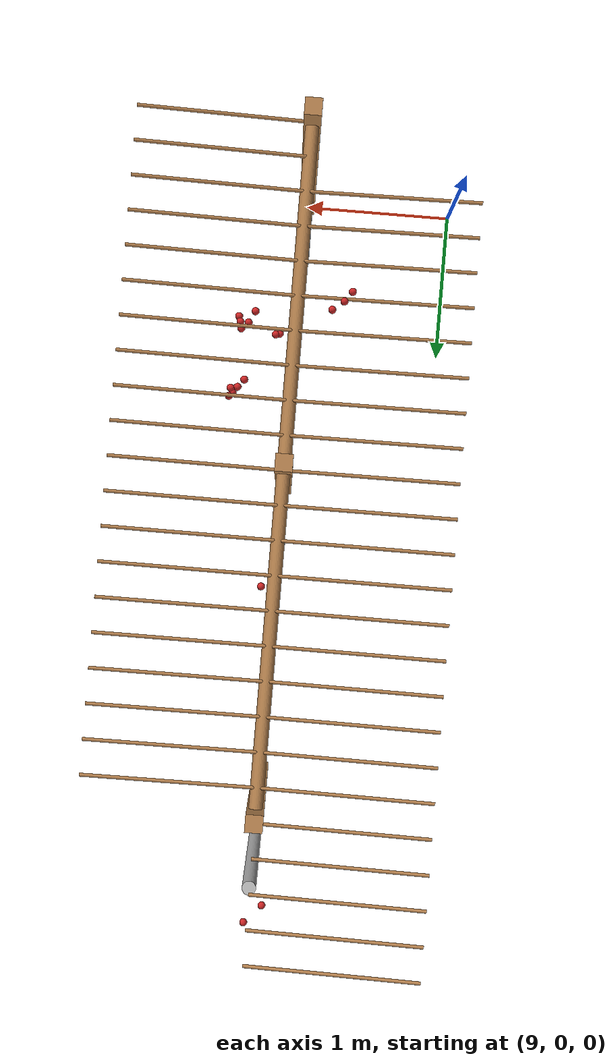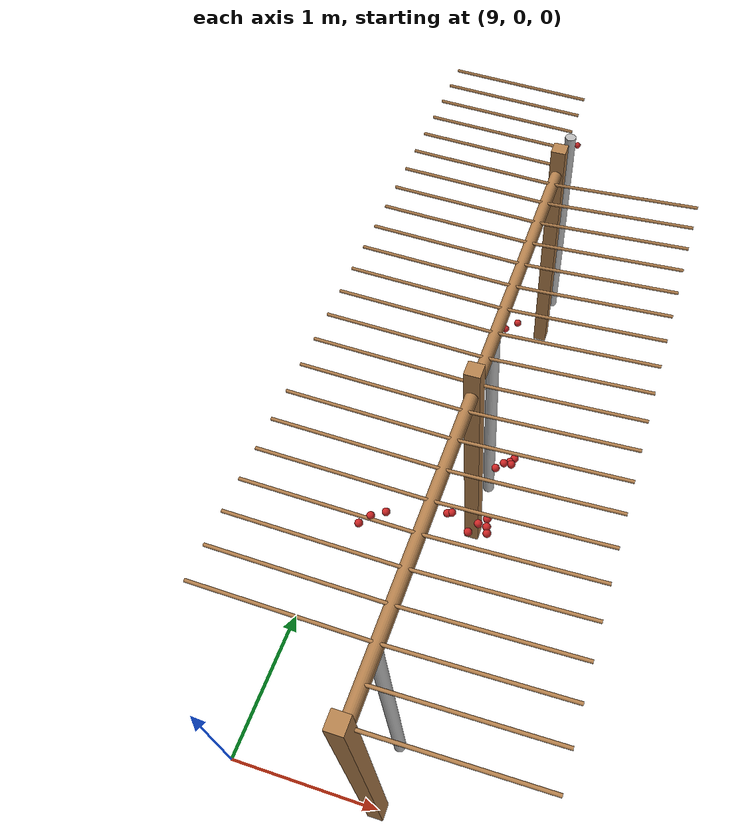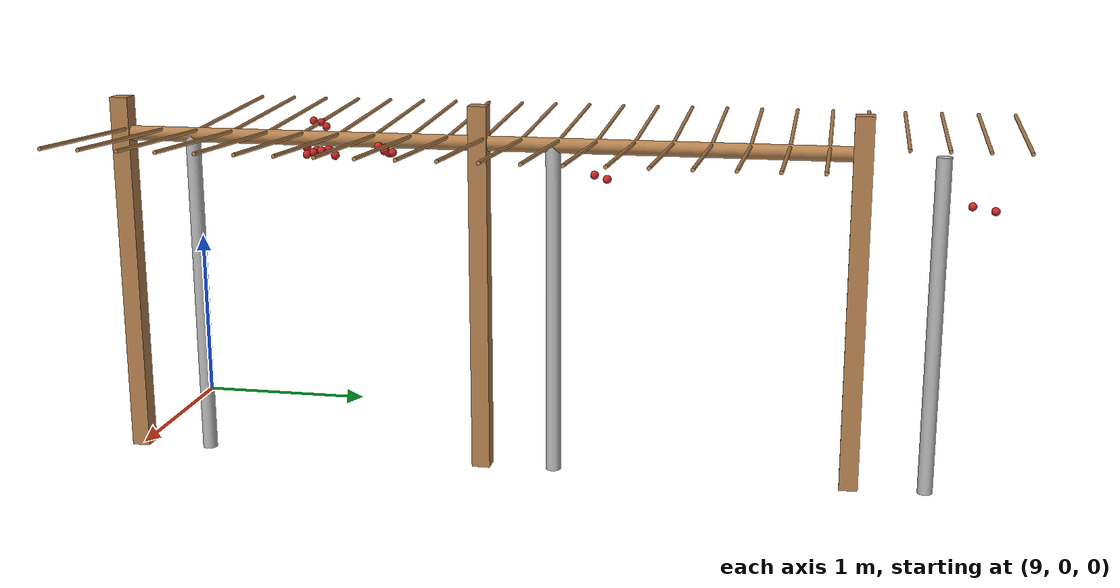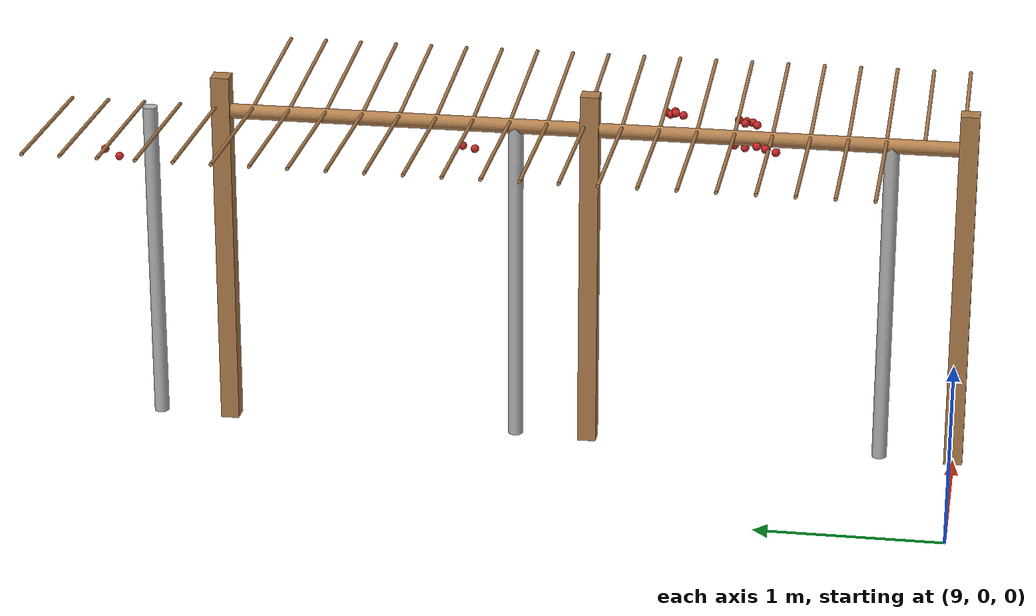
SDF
<sdf version="1.4">
 <model name="pergola">
  <include><name>post_55</name><pose>10.0 0.0 0 0 0 0</pose><uri>model://post</uri></include>
  <include><name>post_56</name><pose>10.0 2.0 0 0 0 0</pose><uri>model://post</uri></include>
  <include><name>post_57</name><pose>10.0 4.0 0 0 0 0</pose><uri>model://post</uri></include>
  <include><name>tree_50</name><pose>10.0 0.4 0 0 0 0</pose><uri>model://tree_trunk</uri></include>
  <include><name>tree_51</name><pose>10.0 2.4 0 0 0 0</pose><uri>model://tree_trunk</uri></include>
  <include><name>tree_52</name><pose>10.0 4.4 0 0 0 0</pose><uri>model://tree_trunk</uri></include>
  <link name="baseBranch_50">
   <pose>10.0 1.0 1.8 1.5707963267948966 0 0</pose>
   <collision name="collision">
    <geometry><cylinder><radius>0.04</radius><length>1.94</length></cylinder></geometry>
   </collision>
   <visual name="visual">
    <geometry><cylinder><radius>0.04</radius><length>1.94</length></cylinder></geometry>
    <material><script><name>Gazebo/WoodFloor</name></script></material>
   </visual>
   <inertial>
    <mass>10</mass>
    <inertia>
     <ixx>3.140333333333333</ixx>
     <ixy>0.0</ixy>
     <ixz>0.0</ixz>
     <iyy>3.140333333333333</iyy>
     <iyz>0.0</iyz>
     <izz>0.008</izz>
    </inertia>
   </inertial>
  </link>
  <link name="baseBranch_51">
   <pose>10.0 3.0 1.8 1.5707963267948966 0 0</pose>
   <collision name="collision">
    <geometry><cylinder><radius>0.04</radius><length>1.94</length></cylinder></geometry>
   </collision>
   <visual name="visual">
    <geometry><cylinder><radius>0.04</radius><length>1.94</length></cylinder></geometry>
    <material><script><name>Gazebo/WoodFloor</name></script></material>
   </visual>
   <inertial>
    <mass>10</mass>
    <inertia>
     <ixx>3.140333333333333</ixx>
     <ixy>0.0</ixy>
     <ixz>0.0</ixz>
     <iyy>3.140333333333333</iyy>
     <iyz>0.0</iyz>
     <izz>0.008</izz>
    </inertia>
   </inertial>
  </link>
  <link name="vine_805">
   <pose>9.5 0.43000000000000005 1.85 0 -1.5208379310729538 0</pose>
   <collision name="collision">
    <geometry><cylinder><radius>0.01</radius><length>1.0012492197250393</length></cylinder></geometry>
   </collision>
   <visual name="visual">
    <geometry><cylinder><radius>0.01</radius><length>1.0012492197250393</length></cylinder></geometry>
    <material><script><name>Gazebo/WoodFloor</name></script></material>
   </visual>
   <inertial>
    <mass>5</mass>
    <inertia>
     <ixx>0.41783333333333345</ixx>
     <ixy>0.0</ixy>
     <ixz>0.0</ixz>
     <iyy>0.41783333333333345</iyy>
     <iyz>0.0</iyz>
     <izz>0.00025</izz>
    </inertia>
   </inertial>
  </link>
  <link name="vine_807">
   <pose>9.5 0.6300000000000001 1.85 0 -1.5208379310729538 0</pose>
   <collision name="collision">
    <geometry><cylinder><radius>0.01</radius><length>1.0012492197250393</length></cylinder></geometry>
   </collision>
   <visual name="visual">
    <geometry><cylinder><radius>0.01</radius><length>1.0012492197250393</length></cylinder></geometry>
    <material><script><name>Gazebo/WoodFloor</name></script></material>
   </visual>
   <inertial>
    <mass>5</mass>
    <inertia>
     <ixx>0.41783333333333345</ixx>
     <ixy>0.0</ixy>
     <ixz>0.0</ixz>
     <iyy>0.41783333333333345</iyy>
     <iyz>0.0</iyz>
     <izz>0.00025</izz>
    </inertia>
   </inertial>
  </link>
  <link name="vine_809">
   <pose>9.5 0.8300000000000001 1.85 0 -1.5208379310729538 0</pose>
   <collision name="collision">
    <geometry><cylinder><radius>0.01</radius><length>1.0012492197250393</length></cylinder></geometry>
   </collision>
   <visual name="visual">
    <geometry><cylinder><radius>0.01</radius><length>1.0012492197250393</length></cylinder></geometry>
    <material><script><name>Gazebo/WoodFloor</name></script></material>
   </visual>
   <inertial>
    <mass>5</mass>
    <inertia>
     <ixx>0.41783333333333345</ixx>
     <ixy>0.0</ixy>
     <ixz>0.0</ixz>
     <iyy>0.41783333333333345</iyy>
     <iyz>0.0</iyz>
     <izz>0.00025</izz>
    </inertia>
   </inertial>
  </link>
  <link name="vine_811">
   <pose>9.5 1.03 1.85 0 -1.5208379310729538 0</pose>
   <collision name="collision">
    <geometry><cylinder><radius>0.01</radius><length>1.0012492197250393</length></cylinder></geometry>
   </collision>
   <visual name="visual">
    <geometry><cylinder><radius>0.01</radius><length>1.0012492197250393</length></cylinder></geometry>
    <material><script><name>Gazebo/WoodFloor</name></script></material>
   </visual>
   <inertial>
    <mass>5</mass>
    <inertia>
     <ixx>0.41783333333333345</ixx>
     <ixy>0.0</ixy>
     <ixz>0.0</ixz>
     <iyy>0.41783333333333345</iyy>
     <iyz>0.0</iyz>
     <izz>0.00025</izz>
    </inertia>
   </inertial>
  </link>
  <link name="vine_813">
   <pose>9.5 1.2300000000000002 1.85 0 -1.5208379310729538 0</pose>
   <collision name="collision">
    <geometry><cylinder><radius>0.01</radius><length>1.0012492197250393</length></cylinder></geometry>
   </collision>
   <visual name="visual">
    <geometry><cylinder><radius>0.01</radius><length>1.0012492197250393</length></cylinder></geometry>
    <material><script><name>Gazebo/WoodFloor</name></script></material>
   </visual>
   <inertial>
    <mass>5</mass>
    <inertia>
     <ixx>0.41783333333333345</ixx>
     <ixy>0.0</ixy>
     <ixz>0.0</ixz>
     <iyy>0.41783333333333345</iyy>
     <iyz>0.0</iyz>
     <izz>0.00025</izz>
    </inertia>
   </inertial>
  </link>
  <link name="vine_815">
   <pose>9.5 1.4300000000000002 1.85 0 -1.5208379310729538 0</pose>
   <collision name="collision">
    <geometry><cylinder><radius>0.01</radius><length>1.0012492197250393</length></cylinder></geometry>
   </collision>
   <visual name="visual">
    <geometry><cylinder><radius>0.01</radius><length>1.0012492197250393</length></cylinder></geometry>
    <material><script><name>Gazebo/WoodFloor</name></script></material>
   </visual>
   <inertial>
    <mass>5</mass>
    <inertia>
     <ixx>0.41783333333333345</ixx>
     <ixy>0.0</ixy>
     <ixz>0.0</ixz>
     <iyy>0.41783333333333345</iyy>
     <iyz>0.0</iyz>
     <izz>0.00025</izz>
    </inertia>
   </inertial>
  </link>
  <link name="vine_817">
   <pose>9.5 1.6300000000000001 1.85 0 -1.5208379310729538 0</pose>
   <collision name="collision">
    <geometry><cylinder><radius>0.01</radius><length>1.0012492197250393</length></cylinder></geometry>
   </collision>
   <visual name="visual">
    <geometry><cylinder><radius>0.01</radius><length>1.0012492197250393</length></cylinder></geometry>
    <material><script><name>Gazebo/WoodFloor</name></script></material>
   </visual>
   <inertial>
    <mass>5</mass>
    <inertia>
     <ixx>0.41783333333333345</ixx>
     <ixy>0.0</ixy>
     <ixz>0.0</ixz>
     <iyy>0.41783333333333345</iyy>
     <iyz>0.0</iyz>
     <izz>0.00025</izz>
    </inertia>
   </inertial>
  </link>
  <link name="vine_819">
   <pose>9.5 1.83 1.85 0 -1.5208379310729538 0</pose>
   <collision name="collision">
    <geometry><cylinder><radius>0.01</radius><length>1.0012492197250393</length></cylinder></geometry>
   </collision>
   <visual name="visual">
    <geometry><cylinder><radius>0.01</radius><length>1.0012492197250393</length></cylinder></geometry>
    <material><script><name>Gazebo/WoodFloor</name></script></material>
   </visual>
   <inertial>
    <mass>5</mass>
    <inertia>
     <ixx>0.41783333333333345</ixx>
     <ixy>0.0</ixy>
     <ixz>0.0</ixz>
     <iyy>0.41783333333333345</iyy>
     <iyz>0.0</iyz>
     <izz>0.00025</izz>
    </inertia>
   </inertial>
  </link>
  <link name="vine_821">
   <pose>9.5 2.03 1.85 0 -1.5208379310729538 0</pose>
   <collision name="collision">
    <geometry><cylinder><radius>0.01</radius><length>1.0012492197250393</length></cylinder></geometry>
   </collision>
   <visual name="visual">
    <geometry><cylinder><radius>0.01</radius><length>1.0012492197250393</length></cylinder></geometry>
    <material><script><name>Gazebo/WoodFloor</name></script></material>
   </visual>
   <inertial>
    <mass>5</mass>
    <inertia>
     <ixx>0.41783333333333345</ixx>
     <ixy>0.0</ixy>
     <ixz>0.0</ixz>
     <iyy>0.41783333333333345</iyy>
     <iyz>0.0</iyz>
     <izz>0.00025</izz>
    </inertia>
   </inertial>
  </link>
  <link name="vine_823">
   <pose>9.5 2.23 1.85 0 -1.5208379310729538 0</pose>
   <collision name="collision">
    <geometry><cylinder><radius>0.01</radius><length>1.0012492197250393</length></cylinder></geometry>
   </collision>
   <visual name="visual">
    <geometry><cylinder><radius>0.01</radius><length>1.0012492197250393</length></cylinder></geometry>
    <material><script><name>Gazebo/WoodFloor</name></script></material>
   </visual>
   <inertial>
    <mass>5</mass>
    <inertia>
     <ixx>0.41783333333333345</ixx>
     <ixy>0.0</ixy>
     <ixz>0.0</ixz>
     <iyy>0.41783333333333345</iyy>
     <iyz>0.0</iyz>
     <izz>0.00025</izz>
    </inertia>
   </inertial>
  </link>
  <link name="vine_825">
   <pose>9.5 2.43 1.85 0 -1.5208379310729538 0</pose>
   <collision name="collision">
    <geometry><cylinder><radius>0.01</radius><length>1.0012492197250393</length></cylinder></geometry>
   </collision>
   <visual name="visual">
    <geometry><cylinder><radius>0.01</radius><length>1.0012492197250393</length></cylinder></geometry>
    <material><script><name>Gazebo/WoodFloor</name></script></material>
   </visual>
   <inertial>
    <mass>5</mass>
    <inertia>
     <ixx>0.41783333333333345</ixx>
     <ixy>0.0</ixy>
     <ixz>0.0</ixz>
     <iyy>0.41783333333333345</iyy>
     <iyz>0.0</iyz>
     <izz>0.00025</izz>
    </inertia>
   </inertial>
  </link>
  <link name="vine_827">
   <pose>9.5 2.63 1.85 0 -1.5208379310729538 0</pose>
   <collision name="collision">
    <geometry><cylinder><radius>0.01</radius><length>1.0012492197250393</length></cylinder></geometry>
   </collision>
   <visual name="visual">
    <geometry><cylinder><radius>0.01</radius><length>1.0012492197250393</length></cylinder></geometry>
    <material><script><name>Gazebo/WoodFloor</name></script></material>
   </visual>
   <inertial>
    <mass>5</mass>
    <inertia>
     <ixx>0.41783333333333345</ixx>
     <ixy>0.0</ixy>
     <ixz>0.0</ixz>
     <iyy>0.41783333333333345</iyy>
     <iyz>0.0</iyz>
     <izz>0.00025</izz>
    </inertia>
   </inertial>
  </link>
  <link name="vine_829">
   <pose>9.5 2.83 1.85 0 -1.5208379310729538 0</pose>
   <collision name="collision">
    <geometry><cylinder><radius>0.01</radius><length>1.0012492197250393</length></cylinder></geometry>
   </collision>
   <visual name="visual">
    <geometry><cylinder><radius>0.01</radius><length>1.0012492197250393</length></cylinder></geometry>
    <material><script><name>Gazebo/WoodFloor</name></script></material>
   </visual>
   <inertial>
    <mass>5</mass>
    <inertia>
     <ixx>0.41783333333333345</ixx>
     <ixy>0.0</ixy>
     <ixz>0.0</ixz>
     <iyy>0.41783333333333345</iyy>
     <iyz>0.0</iyz>
     <izz>0.00025</izz>
    </inertia>
   </inertial>
  </link>
  <link name="vine_831">
   <pose>9.5 3.03 1.85 0 -1.5208379310729538 0</pose>
   <collision name="collision">
    <geometry><cylinder><radius>0.01</radius><length>1.0012492197250393</length></cylinder></geometry>
   </collision>
   <visual name="visual">
    <geometry><cylinder><radius>0.01</radius><length>1.0012492197250393</length></cylinder></geometry>
    <material><script><name>Gazebo/WoodFloor</name></script></material>
   </visual>
   <inertial>
    <mass>5</mass>
    <inertia>
     <ixx>0.41783333333333345</ixx>
     <ixy>0.0</ixy>
     <ixz>0.0</ixz>
     <iyy>0.41783333333333345</iyy>
     <iyz>0.0</iyz>
     <izz>0.00025</izz>
    </inertia>
   </inertial>
  </link>
  <link name="vine_833">
   <pose>9.5 3.23 1.85 0 -1.5208379310729538 0</pose>
   <collision name="collision">
    <geometry><cylinder><radius>0.01</radius><length>1.0012492197250393</length></cylinder></geometry>
   </collision>
   <visual name="visual">
    <geometry><cylinder><radius>0.01</radius><length>1.0012492197250393</length></cylinder></geometry>
    <material><script><name>Gazebo/WoodFloor</name></script></material>
   </visual>
   <inertial>
    <mass>5</mass>
    <inertia>
     <ixx>0.41783333333333345</ixx>
     <ixy>0.0</ixy>
     <ixz>0.0</ixz>
     <iyy>0.41783333333333345</iyy>
     <iyz>0.0</iyz>
     <izz>0.00025</izz>
    </inertia>
   </inertial>
  </link>
  <link name="vine_835">
   <pose>9.5 3.43 1.85 0 -1.5208379310729538 0</pose>
   <collision name="collision">
    <geometry><cylinder><radius>0.01</radius><length>1.0012492197250393</length></cylinder></geometry>
   </collision>
   <visual name="visual">
    <geometry><cylinder><radius>0.01</radius><length>1.0012492197250393</length></cylinder></geometry>
    <material><script><name>Gazebo/WoodFloor</name></script></material>
   </visual>
   <inertial>
    <mass>5</mass>
    <inertia>
     <ixx>0.41783333333333345</ixx>
     <ixy>0.0</ixy>
     <ixz>0.0</ixz>
     <iyy>0.41783333333333345</iyy>
     <iyz>0.0</iyz>
     <izz>0.00025</izz>
    </inertia>
   </inertial>
  </link>
  <link name="vine_837">
   <pose>9.5 3.63 1.85 0 -1.5208379310729538 0</pose>
   <collision name="collision">
    <geometry><cylinder><radius>0.01</radius><length>1.0012492197250393</length></cylinder></geometry>
   </collision>
   <visual name="visual">
    <geometry><cylinder><radius>0.01</radius><length>1.0012492197250393</length></cylinder></geometry>
    <material><script><name>Gazebo/WoodFloor</name></script></material>
   </visual>
   <inertial>
    <mass>5</mass>
    <inertia>
     <ixx>0.41783333333333345</ixx>
     <ixy>0.0</ixy>
     <ixz>0.0</ixz>
     <iyy>0.41783333333333345</iyy>
     <iyz>0.0</iyz>
     <izz>0.00025</izz>
    </inertia>
   </inertial>
  </link>
  <link name="vine_839">
   <pose>9.5 3.83 1.85 0 -1.5208379310729538 0</pose>
   <collision name="collision">
    <geometry><cylinder><radius>0.01</radius><length>1.0012492197250393</length></cylinder></geometry>
   </collision>
   <visual name="visual">
    <geometry><cylinder><radius>0.01</radius><length>1.0012492197250393</length></cylinder></geometry>
    <material><script><name>Gazebo/WoodFloor</name></script></material>
   </visual>
   <inertial>
    <mass>5</mass>
    <inertia>
     <ixx>0.41783333333333345</ixx>
     <ixy>0.0</ixy>
     <ixz>0.0</ixz>
     <iyy>0.41783333333333345</iyy>
     <iyz>0.0</iyz>
     <izz>0.00025</izz>
    </inertia>
   </inertial>
  </link>
  <link name="vine_841">
   <pose>9.5 4.03 1.85 0 -1.5208379310729538 0</pose>
   <collision name="collision">
    <geometry><cylinder><radius>0.01</radius><length>1.0012492197250393</length></cylinder></geometry>
   </collision>
   <visual name="visual">
    <geometry><cylinder><radius>0.01</radius><length>1.0012492197250393</length></cylinder></geometry>
    <material><script><name>Gazebo/WoodFloor</name></script></material>
   </visual>
   <inertial>
    <mass>5</mass>
    <inertia>
     <ixx>0.41783333333333345</ixx>
     <ixy>0.0</ixy>
     <ixz>0.0</ixz>
     <iyy>0.41783333333333345</iyy>
     <iyz>0.0</iyz>
     <izz>0.00025</izz>
    </inertia>
   </inertial>
  </link>
  <link name="vine_843">
   <pose>9.5 4.23 1.85 0 -1.5208379310729538 0</pose>
   <collision name="collision">
    <geometry><cylinder><radius>0.01</radius><length>1.0012492197250393</length></cylinder></geometry>
   </collision>
   <visual name="visual">
    <geometry><cylinder><radius>0.01</radius><length>1.0012492197250393</length></cylinder></geometry>
    <material><script><name>Gazebo/WoodFloor</name></script></material>
   </visual>
   <inertial>
    <mass>5</mass>
    <inertia>
     <ixx>0.41783333333333345</ixx>
     <ixy>0.0</ixy>
     <ixz>0.0</ixz>
     <iyy>0.41783333333333345</iyy>
     <iyz>0.0</iyz>
     <izz>0.00025</izz>
    </inertia>
   </inertial>
  </link>
  <link name="vine_845">
   <pose>9.5 4.430000000000001 1.85 0 -1.5208379310729538 0</pose>
   <collision name="collision">
    <geometry><cylinder><radius>0.01</radius><length>1.0012492197250393</length></cylinder></geometry>
   </collision>
   <visual name="visual">
    <geometry><cylinder><radius>0.01</radius><length>1.0012492197250393</length></cylinder></geometry>
    <material><script><name>Gazebo/WoodFloor</name></script></material>
   </visual>
   <inertial>
    <mass>5</mass>
    <inertia>
     <ixx>0.41783333333333345</ixx>
     <ixy>0.0</ixy>
     <ixz>0.0</ixz>
     <iyy>0.41783333333333345</iyy>
     <iyz>0.0</iyz>
     <izz>0.00025</izz>
    </inertia>
   </inertial>
  </link>
  <link name="vine_847">
   <pose>9.5 4.630000000000001 1.85 0 -1.5208379310729538 0</pose>
   <collision name="collision">
    <geometry><cylinder><radius>0.01</radius><length>1.0012492197250393</length></cylinder></geometry>
   </collision>
   <visual name="visual">
    <geometry><cylinder><radius>0.01</radius><length>1.0012492197250393</length></cylinder></geometry>
    <material><script><name>Gazebo/WoodFloor</name></script></material>
   </visual>
   <inertial>
    <mass>5</mass>
    <inertia>
     <ixx>0.41783333333333345</ixx>
     <ixy>0.0</ixy>
     <ixz>0.0</ixz>
     <iyy>0.41783333333333345</iyy>
     <iyz>0.0</iyz>
     <izz>0.00025</izz>
    </inertia>
   </inertial>
  </link>
  <link name="vine_849">
   <pose>9.5 4.830000000000001 1.85 0 -1.5208379310729538 0</pose>
   <collision name="collision">
    <geometry><cylinder><radius>0.01</radius><length>1.0012492197250393</length></cylinder></geometry>
   </collision>
   <visual name="visual">
    <geometry><cylinder><radius>0.01</radius><length>1.0012492197250393</length></cylinder></geometry>
    <material><script><name>Gazebo/WoodFloor</name></script></material>
   </visual>
   <inertial>
    <mass>5</mass>
    <inertia>
     <ixx>0.41783333333333345</ixx>
     <ixy>0.0</ixy>
     <ixz>0.0</ixz>
     <iyy>0.41783333333333345</iyy>
     <iyz>0.0</iyz>
     <izz>0.00025</izz>
    </inertia>
   </inertial>
  </link>
  <link name="vine_1000">
   <pose>10.5 0.03 1.85 0 1.5208379310729538 0</pose>
   <collision name="collision">
    <geometry><cylinder><radius>0.01</radius><length>1.0012492197250393</length></cylinder></geometry>
   </collision>
   <visual name="visual">
    <geometry><cylinder><radius>0.01</radius><length>1.0012492197250393</length></cylinder></geometry>
    <material><script><name>Gazebo/WoodFloor</name></script></material>
   </visual>
   <inertial>
    <mass>5</mass>
    <inertia>
     <ixx>0.41783333333333345</ixx>
     <ixy>0.0</ixy>
     <ixz>0.0</ixz>
     <iyy>0.41783333333333345</iyy>
     <iyz>0.0</iyz>
     <izz>0.00025</izz>
    </inertia>
   </inertial>
  </link>
  <link name="vine_1002">
   <pose>10.5 0.23 1.85 0 1.5208379310729538 0</pose>
   <collision name="collision">
    <geometry><cylinder><radius>0.01</radius><length>1.0012492197250393</length></cylinder></geometry>
   </collision>
   <visual name="visual">
    <geometry><cylinder><radius>0.01</radius><length>1.0012492197250393</length></cylinder></geometry>
    <material><script><name>Gazebo/WoodFloor</name></script></material>
   </visual>
   <inertial>
    <mass>5</mass>
    <inertia>
     <ixx>0.41783333333333345</ixx>
     <ixy>0.0</ixy>
     <ixz>0.0</ixz>
     <iyy>0.41783333333333345</iyy>
     <iyz>0.0</iyz>
     <izz>0.00025</izz>
    </inertia>
   </inertial>
  </link>
  <link name="vine_1004">
   <pose>10.5 0.43000000000000005 1.85 0 1.5208379310729538 0</pose>
   <collision name="collision">
    <geometry><cylinder><radius>0.01</radius><length>1.0012492197250393</length></cylinder></geometry>
   </collision>
   <visual name="visual">
    <geometry><cylinder><radius>0.01</radius><length>1.0012492197250393</length></cylinder></geometry>
    <material><script><name>Gazebo/WoodFloor</name></script></material>
   </visual>
   <inertial>
    <mass>5</mass>
    <inertia>
     <ixx>0.41783333333333345</ixx>
     <ixy>0.0</ixy>
     <ixz>0.0</ixz>
     <iyy>0.41783333333333345</iyy>
     <iyz>0.0</iyz>
     <izz>0.00025</izz>
    </inertia>
   </inertial>
  </link>
  <link name="vine_1006">
   <pose>10.5 0.6300000000000001 1.85 0 1.5208379310729538 0</pose>
   <collision name="collision">
    <geometry><cylinder><radius>0.01</radius><length>1.0012492197250393</length></cylinder></geometry>
   </collision>
   <visual name="visual">
    <geometry><cylinder><radius>0.01</radius><length>1.0012492197250393</length></cylinder></geometry>
    <material><script><name>Gazebo/WoodFloor</name></script></material>
   </visual>
   <inertial>
    <mass>5</mass>
    <inertia>
     <ixx>0.41783333333333345</ixx>
     <ixy>0.0</ixy>
     <ixz>0.0</ixz>
     <iyy>0.41783333333333345</iyy>
     <iyz>0.0</iyz>
     <izz>0.00025</izz>
    </inertia>
   </inertial>
  </link>
  <link name="vine_1008">
   <pose>10.5 0.8300000000000001 1.85 0 1.5208379310729538 0</pose>
   <collision name="collision">
    <geometry><cylinder><radius>0.01</radius><length>1.0012492197250393</length></cylinder></geometry>
   </collision>
   <visual name="visual">
    <geometry><cylinder><radius>0.01</radius><length>1.0012492197250393</length></cylinder></geometry>
    <material><script><name>Gazebo/WoodFloor</name></script></material>
   </visual>
   <inertial>
    <mass>5</mass>
    <inertia>
     <ixx>0.41783333333333345</ixx>
     <ixy>0.0</ixy>
     <ixz>0.0</ixz>
     <iyy>0.41783333333333345</iyy>
     <iyz>0.0</iyz>
     <izz>0.00025</izz>
    </inertia>
   </inertial>
  </link>
  <link name="vine_1010">
   <pose>10.5 1.03 1.85 0 1.5208379310729538 0</pose>
   <collision name="collision">
    <geometry><cylinder><radius>0.01</radius><length>1.0012492197250393</length></cylinder></geometry>
   </collision>
   <visual name="visual">
    <geometry><cylinder><radius>0.01</radius><length>1.0012492197250393</length></cylinder></geometry>
    <material><script><name>Gazebo/WoodFloor</name></script></material>
   </visual>
   <inertial>
    <mass>5</mass>
    <inertia>
     <ixx>0.41783333333333345</ixx>
     <ixy>0.0</ixy>
     <ixz>0.0</ixz>
     <iyy>0.41783333333333345</iyy>
     <iyz>0.0</iyz>
     <izz>0.00025</izz>
    </inertia>
   </inertial>
  </link>
  <link name="vine_1012">
   <pose>10.5 1.2300000000000002 1.85 0 1.5208379310729538 0</pose>
   <collision name="collision">
    <geometry><cylinder><radius>0.01</radius><length>1.0012492197250393</length></cylinder></geometry>
   </collision>
   <visual name="visual">
    <geometry><cylinder><radius>0.01</radius><length>1.0012492197250393</length></cylinder></geometry>
    <material><script><name>Gazebo/WoodFloor</name></script></material>
   </visual>
   <inertial>
    <mass>5</mass>
    <inertia>
     <ixx>0.41783333333333345</ixx>
     <ixy>0.0</ixy>
     <ixz>0.0</ixz>
     <iyy>0.41783333333333345</iyy>
     <iyz>0.0</iyz>
     <izz>0.00025</izz>
    </inertia>
   </inertial>
  </link>
  <link name="vine_1014">
   <pose>10.5 1.4300000000000002 1.85 0 1.5208379310729538 0</pose>
   <collision name="collision">
    <geometry><cylinder><radius>0.01</radius><length>1.0012492197250393</length></cylinder></geometry>
   </collision>
   <visual name="visual">
    <geometry><cylinder><radius>0.01</radius><length>1.0012492197250393</length></cylinder></geometry>
    <material><script><name>Gazebo/WoodFloor</name></script></material>
   </visual>
   <inertial>
    <mass>5</mass>
    <inertia>
     <ixx>0.41783333333333345</ixx>
     <ixy>0.0</ixy>
     <ixz>0.0</ixz>
     <iyy>0.41783333333333345</iyy>
     <iyz>0.0</iyz>
     <izz>0.00025</izz>
    </inertia>
   </inertial>
  </link>
  <link name="vine_1016">
   <pose>10.5 1.6300000000000001 1.85 0 1.5208379310729538 0</pose>
   <collision name="collision">
    <geometry><cylinder><radius>0.01</radius><length>1.0012492197250393</length></cylinder></geometry>
   </collision>
   <visual name="visual">
    <geometry><cylinder><radius>0.01</radius><length>1.0012492197250393</length></cylinder></geometry>
    <material><script><name>Gazebo/WoodFloor</name></script></material>
   </visual>
   <inertial>
    <mass>5</mass>
    <inertia>
     <ixx>0.41783333333333345</ixx>
     <ixy>0.0</ixy>
     <ixz>0.0</ixz>
     <iyy>0.41783333333333345</iyy>
     <iyz>0.0</iyz>
     <izz>0.00025</izz>
    </inertia>
   </inertial>
  </link>
  <link name="vine_1018">
   <pose>10.5 1.83 1.85 0 1.5208379310729538 0</pose>
   <collision name="collision">
    <geometry><cylinder><radius>0.01</radius><length>1.0012492197250393</length></cylinder></geometry>
   </collision>
   <visual name="visual">
    <geometry><cylinder><radius>0.01</radius><length>1.0012492197250393</length></cylinder></geometry>
    <material><script><name>Gazebo/WoodFloor</name></script></material>
   </visual>
   <inertial>
    <mass>5</mass>
    <inertia>
     <ixx>0.41783333333333345</ixx>
     <ixy>0.0</ixy>
     <ixz>0.0</ixz>
     <iyy>0.41783333333333345</iyy>
     <iyz>0.0</iyz>
     <izz>0.00025</izz>
    </inertia>
   </inertial>
  </link>
  <link name="vine_1020">
   <pose>10.5 2.03 1.85 0 1.5208379310729538 0</pose>
   <collision name="collision">
    <geometry><cylinder><radius>0.01</radius><length>1.0012492197250393</length></cylinder></geometry>
   </collision>
   <visual name="visual">
    <geometry><cylinder><radius>0.01</radius><length>1.0012492197250393</length></cylinder></geometry>
    <material><script><name>Gazebo/WoodFloor</name></script></material>
   </visual>
   <inertial>
    <mass>5</mass>
    <inertia>
     <ixx>0.41783333333333345</ixx>
     <ixy>0.0</ixy>
     <ixz>0.0</ixz>
     <iyy>0.41783333333333345</iyy>
     <iyz>0.0</iyz>
     <izz>0.00025</izz>
    </inertia>
   </inertial>
  </link>
  <link name="vine_1022">
   <pose>10.5 2.23 1.85 0 1.5208379310729538 0</pose>
   <collision name="collision">
    <geometry><cylinder><radius>0.01</radius><length>1.0012492197250393</length></cylinder></geometry>
   </collision>
   <visual name="visual">
    <geometry><cylinder><radius>0.01</radius><length>1.0012492197250393</length></cylinder></geometry>
    <material><script><name>Gazebo/WoodFloor</name></script></material>
   </visual>
   <inertial>
    <mass>5</mass>
    <inertia>
     <ixx>0.41783333333333345</ixx>
     <ixy>0.0</ixy>
     <ixz>0.0</ixz>
     <iyy>0.41783333333333345</iyy>
     <iyz>0.0</iyz>
     <izz>0.00025</izz>
    </inertia>
   </inertial>
  </link>
  <link name="vine_1024">
   <pose>10.5 2.43 1.85 0 1.5208379310729538 0</pose>
   <collision name="collision">
    <geometry><cylinder><radius>0.01</radius><length>1.0012492197250393</length></cylinder></geometry>
   </collision>
   <visual name="visual">
    <geometry><cylinder><radius>0.01</radius><length>1.0012492197250393</length></cylinder></geometry>
    <material><script><name>Gazebo/WoodFloor</name></script></material>
   </visual>
   <inertial>
    <mass>5</mass>
    <inertia>
     <ixx>0.41783333333333345</ixx>
     <ixy>0.0</ixy>
     <ixz>0.0</ixz>
     <iyy>0.41783333333333345</iyy>
     <iyz>0.0</iyz>
     <izz>0.00025</izz>
    </inertia>
   </inertial>
  </link>
  <link name="vine_1026">
   <pose>10.5 2.63 1.85 0 1.5208379310729538 0</pose>
   <collision name="collision">
    <geometry><cylinder><radius>0.01</radius><length>1.0012492197250393</length></cylinder></geometry>
   </collision>
   <visual name="visual">
    <geometry><cylinder><radius>0.01</radius><length>1.0012492197250393</length></cylinder></geometry>
    <material><script><name>Gazebo/WoodFloor</name></script></material>
   </visual>
   <inertial>
    <mass>5</mass>
    <inertia>
     <ixx>0.41783333333333345</ixx>
     <ixy>0.0</ixy>
     <ixz>0.0</ixz>
     <iyy>0.41783333333333345</iyy>
     <iyz>0.0</iyz>
     <izz>0.00025</izz>
    </inertia>
   </inertial>
  </link>
  <link name="vine_1028">
   <pose>10.5 2.83 1.85 0 1.5208379310729538 0</pose>
   <collision name="collision">
    <geometry><cylinder><radius>0.01</radius><length>1.0012492197250393</length></cylinder></geometry>
   </collision>
   <visual name="visual">
    <geometry><cylinder><radius>0.01</radius><length>1.0012492197250393</length></cylinder></geometry>
    <material><script><name>Gazebo/WoodFloor</name></script></material>
   </visual>
   <inertial>
    <mass>5</mass>
    <inertia>
     <ixx>0.41783333333333345</ixx>
     <ixy>0.0</ixy>
     <ixz>0.0</ixz>
     <iyy>0.41783333333333345</iyy>
     <iyz>0.0</iyz>
     <izz>0.00025</izz>
    </inertia>
   </inertial>
  </link>
  <link name="vine_1030">
   <pose>10.5 3.03 1.85 0 1.5208379310729538 0</pose>
   <collision name="collision">
    <geometry><cylinder><radius>0.01</radius><length>1.0012492197250393</length></cylinder></geometry>
   </collision>
   <visual name="visual">
    <geometry><cylinder><radius>0.01</radius><length>1.0012492197250393</length></cylinder></geometry>
    <material><script><name>Gazebo/WoodFloor</name></script></material>
   </visual>
   <inertial>
    <mass>5</mass>
    <inertia>
     <ixx>0.41783333333333345</ixx>
     <ixy>0.0</ixy>
     <ixz>0.0</ixz>
     <iyy>0.41783333333333345</iyy>
     <iyz>0.0</iyz>
     <izz>0.00025</izz>
    </inertia>
   </inertial>
  </link>
  <link name="vine_1032">
   <pose>10.5 3.23 1.85 0 1.5208379310729538 0</pose>
   <collision name="collision">
    <geometry><cylinder><radius>0.01</radius><length>1.0012492197250393</length></cylinder></geometry>
   </collision>
   <visual name="visual">
    <geometry><cylinder><radius>0.01</radius><length>1.0012492197250393</length></cylinder></geometry>
    <material><script><name>Gazebo/WoodFloor</name></script></material>
   </visual>
   <inertial>
    <mass>5</mass>
    <inertia>
     <ixx>0.41783333333333345</ixx>
     <ixy>0.0</ixy>
     <ixz>0.0</ixz>
     <iyy>0.41783333333333345</iyy>
     <iyz>0.0</iyz>
     <izz>0.00025</izz>
    </inertia>
   </inertial>
  </link>
  <link name="vine_1034">
   <pose>10.5 3.43 1.85 0 1.5208379310729538 0</pose>
   <collision name="collision">
    <geometry><cylinder><radius>0.01</radius><length>1.0012492197250393</length></cylinder></geometry>
   </collision>
   <visual name="visual">
    <geometry><cylinder><radius>0.01</radius><length>1.0012492197250393</length></cylinder></geometry>
    <material><script><name>Gazebo/WoodFloor</name></script></material>
   </visual>
   <inertial>
    <mass>5</mass>
    <inertia>
     <ixx>0.41783333333333345</ixx>
     <ixy>0.0</ixy>
     <ixz>0.0</ixz>
     <iyy>0.41783333333333345</iyy>
     <iyz>0.0</iyz>
     <izz>0.00025</izz>
    </inertia>
   </inertial>
  </link>
  <link name="vine_1036">
   <pose>10.5 3.63 1.85 0 1.5208379310729538 0</pose>
   <collision name="collision">
    <geometry><cylinder><radius>0.01</radius><length>1.0012492197250393</length></cylinder></geometry>
   </collision>
   <visual name="visual">
    <geometry><cylinder><radius>0.01</radius><length>1.0012492197250393</length></cylinder></geometry>
    <material><script><name>Gazebo/WoodFloor</name></script></material>
   </visual>
   <inertial>
    <mass>5</mass>
    <inertia>
     <ixx>0.41783333333333345</ixx>
     <ixy>0.0</ixy>
     <ixz>0.0</ixz>
     <iyy>0.41783333333333345</iyy>
     <iyz>0.0</iyz>
     <izz>0.00025</izz>
    </inertia>
   </inertial>
  </link>
  <link name="vine_1038">
   <pose>10.5 3.83 1.85 0 1.5208379310729538 0</pose>
   <collision name="collision">
    <geometry><cylinder><radius>0.01</radius><length>1.0012492197250393</length></cylinder></geometry>
   </collision>
   <visual name="visual">
    <geometry><cylinder><radius>0.01</radius><length>1.0012492197250393</length></cylinder></geometry>
    <material><script><name>Gazebo/WoodFloor</name></script></material>
   </visual>
   <inertial>
    <mass>5</mass>
    <inertia>
     <ixx>0.41783333333333345</ixx>
     <ixy>0.0</ixy>
     <ixz>0.0</ixz>
     <iyy>0.41783333333333345</iyy>
     <iyz>0.0</iyz>
     <izz>0.00025</izz>
    </inertia>
   </inertial>
  </link>
  <link name="fruit_36">
   <pose>10.26559434781672 1.5307579194822716 1.8116379404332046 0 0 0</pose>
   <collision name="fruit_collision_36"><geometry><sphere><radius>0.022</radius></sphere></geometry></collision>
   <visual name="visual">
    <geometry><sphere><radius>0.022</radius></sphere></geometry>
    <material><script><name>Gazebo/Red</name></script></material>
   </visual>
   <inertial>
    <mass>0.05</mass>
    <inertia>
     <ixx>9.679999999999999e-06</ixx>
     <ixy>0.0</ixy>
     <ixz>0.0</ixz>
     <iyy>9.679999999999999e-06</iyy>
     <iyz>0.0</iyz>
     <izz>9.679999999999999e-06</izz>
    </inertia>
   </inertial>
   <sensor name="fruit_contact_36" type="contact">
    <contact><collision>fruit_collision_36</collision></contact>
   </sensor>
  </link>
  <link name="fruit_125">
   <pose>9.691478599379497 0.9869659243278547 1.8457934337235629 0 0 0</pose>
   <collision name="fruit_collision_125"><geometry><sphere><radius>0.022</radius></sphere></geometry></collision>
   <visual name="visual">
    <geometry><sphere><radius>0.022</radius></sphere></geometry>
    <material><script><name>Gazebo/Red</name></script></material>
   </visual>
   <inertial>
    <mass>0.05</mass>
    <inertia>
     <ixx>9.679999999999999e-06</ixx>
     <ixy>0.0</ixy>
     <ixz>0.0</ixz>
     <iyy>9.679999999999999e-06</iyy>
     <iyz>0.0</iyz>
     <izz>9.679999999999999e-06</izz>
    </inertia>
   </inertial>
   <sensor name="fruit_contact_125" type="contact">
    <contact><collision>fruit_collision_125</collision></contact>
   </sensor>
  </link>
  <link name="fruit_173">
   <pose>10.01634417097886 2.622996880979882 1.6516819723785943 0 0 0</pose>
   <collision name="fruit_collision_173"><geometry><sphere><radius>0.022</radius></sphere></geometry></collision>
   <visual name="visual">
    <geometry><sphere><radius>0.022</radius></sphere></geometry>
    <material><script><name>Gazebo/Red</name></script></material>
   </visual>
   <inertial>
    <mass>0.05</mass>
    <inertia>
     <ixx>9.679999999999999e-06</ixx>
     <ixy>0.0</ixy>
     <ixz>0.0</ixz>
     <iyy>9.679999999999999e-06</iyy>
     <iyz>0.0</iyz>
     <izz>9.679999999999999e-06</izz>
    </inertia>
   </inertial>
   <sensor name="fruit_contact_173" type="contact">
    <contact><collision>fruit_collision_173</collision></contact>
   </sensor>
  </link>
  <link name="fruit_208">
   <pose>9.920031878298069 4.558951254520706 1.534368776474984 0 0 0</pose>
   <collision name="fruit_collision_208"><geometry><sphere><radius>0.022</radius></sphere></geometry></collision>
   <visual name="visual">
    <geometry><sphere><radius>0.022</radius></sphere></geometry>
    <material><script><name>Gazebo/Red</name></script></material>
   </visual>
   <inertial>
    <mass>0.05</mass>
    <inertia>
     <ixx>9.679999999999999e-06</ixx>
     <ixy>0.0</ixy>
     <ixz>0.0</ixz>
     <iyy>9.679999999999999e-06</iyy>
     <iyz>0.0</iyz>
     <izz>9.679999999999999e-06</izz>
    </inertia>
   </inertial>
   <sensor name="fruit_contact_208" type="contact">
    <contact><collision>fruit_collision_208</collision></contact>
   </sensor>
  </link>
  <link name="fruit_281">
   <pose>10.004579435303095 1.1750860061232273 1.7438168615781884 0 0 0</pose>
   <collision name="fruit_collision_281"><geometry><sphere><radius>0.022</radius></sphere></geometry></collision>
   <visual name="visual">
    <geometry><sphere><radius>0.022</radius></sphere></geometry>
    <material><script><name>Gazebo/Red</name></script></material>
   </visual>
   <inertial>
    <mass>0.05</mass>
    <inertia>
     <ixx>9.679999999999999e-06</ixx>
     <ixy>0.0</ixy>
     <ixz>0.0</ixz>
     <iyy>9.679999999999999e-06</iyy>
     <iyz>0.0</iyz>
     <izz>9.679999999999999e-06</izz>
    </inertia>
   </inertial>
   <sensor name="fruit_contact_281" type="contact">
    <contact><collision>fruit_collision_281</collision></contact>
   </sensor>
  </link>
  <link name="fruit_350">
   <pose>10.234209379273652 1.1315440438707298 1.7901966685675315 0 0 0</pose>
   <collision name="fruit_collision_350"><geometry><sphere><radius>0.022</radius></sphere></geometry></collision>
   <visual name="visual">
    <geometry><sphere><radius>0.022</radius></sphere></geometry>
    <material><script><name>Gazebo/Red</name></script></material>
   </visual>
   <inertial>
    <mass>0.05</mass>
    <inertia>
     <ixx>9.679999999999999e-06</ixx>
     <ixy>0.0</ixy>
     <ixz>0.0</ixz>
     <iyy>9.679999999999999e-06</iyy>
     <iyz>0.0</iyz>
     <izz>9.679999999999999e-06</izz>
    </inertia>
   </inertial>
   <sensor name="fruit_contact_350" type="contact">
    <contact><collision>fruit_collision_350</collision></contact>
   </sensor>
  </link>
  <link name="fruit_418">
   <pose>10.327970046978038 1.6043587439650209 1.7904383397968653 0 0 0</pose>
   <collision name="fruit_collision_418"><geometry><sphere><radius>0.022</radius></sphere></geometry></collision>
   <visual name="visual">
    <geometry><sphere><radius>0.022</radius></sphere></geometry>
    <material><script><name>Gazebo/Red</name></script></material>
   </visual>
   <inertial>
    <mass>0.05</mass>
    <inertia>
     <ixx>9.679999999999999e-06</ixx>
     <ixy>0.0</ixy>
     <ixz>0.0</ixz>
     <iyy>9.679999999999999e-06</iyy>
     <iyz>0.0</iyz>
     <izz>9.679999999999999e-06</izz>
    </inertia>
   </inertial>
   <sensor name="fruit_contact_418" type="contact">
    <contact><collision>fruit_collision_418</collision></contact>
   </sensor>
  </link>
  <link name="fruit_433">
   <pose>10.109677395574677 1.2436787400587455 1.7306350228050986 0 0 0</pose>
   <collision name="fruit_collision_433"><geometry><sphere><radius>0.022</radius></sphere></geometry></collision>
   <visual name="visual">
    <geometry><sphere><radius>0.022</radius></sphere></geometry>
    <material><script><name>Gazebo/Red</name></script></material>
   </visual>
   <inertial>
    <mass>0.05</mass>
    <inertia>
     <ixx>9.679999999999999e-06</ixx>
     <ixy>0.0</ixy>
     <ixz>0.0</ixz>
     <iyy>9.679999999999999e-06</iyy>
     <iyz>0.0</iyz>
     <izz>9.679999999999999e-06</izz>
    </inertia>
   </inertial>
   <sensor name="fruit_contact_433" type="contact">
    <contact><collision>fruit_collision_433</collision></contact>
   </sensor>
  </link>
  <link name="fruit_434">
   <pose>10.308071197542306 1.23528322673205 1.7868100165705059 0 0 0</pose>
   <collision name="fruit_collision_434"><geometry><sphere><radius>0.022</radius></sphere></geometry></collision>
   <visual name="visual">
    <geometry><sphere><radius>0.022</radius></sphere></geometry>
    <material><script><name>Gazebo/Red</name></script></material>
   </visual>
   <inertial>
    <mass>0.05</mass>
    <inertia>
     <ixx>9.679999999999999e-06</ixx>
     <ixy>0.0</ixy>
     <ixz>0.0</ixz>
     <iyy>9.679999999999999e-06</iyy>
     <iyz>0.0</iyz>
     <izz>9.679999999999999e-06</izz>
    </inertia>
   </inertial>
   <sensor name="fruit_contact_434" type="contact">
    <contact><collision>fruit_collision_434</collision></contact>
   </sensor>
  </link>
  <link name="fruit_470">
   <pose>9.7993015224587 1.0957254416901236 1.8325838265254606 0 0 0</pose>
   <collision name="fruit_collision_470"><geometry><sphere><radius>0.022</radius></sphere></geometry></collision>
   <visual name="visual">
    <geometry><sphere><radius>0.022</radius></sphere></geometry>
    <material><script><name>Gazebo/Red</name></script></material>
   </visual>
   <inertial>
    <mass>0.05</mass>
    <inertia>
     <ixx>9.679999999999999e-06</ixx>
     <ixy>0.0</ixy>
     <ixz>0.0</ixz>
     <iyy>9.679999999999999e-06</iyy>
     <iyz>0.0</iyz>
     <izz>9.679999999999999e-06</izz>
    </inertia>
   </inertial>
   <sensor name="fruit_contact_470" type="contact">
    <contact><collision>fruit_collision_470</collision></contact>
   </sensor>
  </link>
  <link name="fruit_484">
   <pose>10.30042374223347 1.5749284240258128 1.8095486191782582 0 0 0</pose>
   <collision name="fruit_collision_484"><geometry><sphere><radius>0.022</radius></sphere></geometry></collision>
   <visual name="visual">
    <geometry><sphere><radius>0.022</radius></sphere></geometry>
    <material><script><name>Gazebo/Red</name></script></material>
   </visual>
   <inertial>
    <mass>0.05</mass>
    <inertia>
     <ixx>9.679999999999999e-06</ixx>
     <ixy>0.0</ixy>
     <ixz>0.0</ixz>
     <iyy>9.679999999999999e-06</iyy>
     <iyz>0.0</iyz>
     <izz>9.679999999999999e-06</izz>
    </inertia>
   </inertial>
   <sensor name="fruit_contact_484" type="contact">
    <contact><collision>fruit_collision_484</collision></contact>
   </sensor>
  </link>
  <link name="fruit_500">
   <pose>10.086656641061465 1.236504807032274 1.7244525302594749 0 0 0</pose>
   <collision name="fruit_collision_500"><geometry><sphere><radius>0.022</radius></sphere></geometry></collision>
   <visual name="visual">
    <geometry><sphere><radius>0.022</radius></sphere></geometry>
    <material><script><name>Gazebo/Red</name></script></material>
   </visual>
   <inertial>
    <mass>0.05</mass>
    <inertia>
     <ixx>9.679999999999999e-06</ixx>
     <ixy>0.0</ixy>
     <ixz>0.0</ixz>
     <iyy>9.679999999999999e-06</iyy>
     <iyz>0.0</iyz>
     <izz>9.679999999999999e-06</izz>
    </inertia>
   </inertial>
   <sensor name="fruit_contact_500" type="contact">
    <contact><collision>fruit_collision_500</collision></contact>
   </sensor>
  </link>
  <link name="fruit_591">
   <pose>10.327487280859444 1.1633739631219453 1.7685473235300517 0 0 0</pose>
   <collision name="fruit_collision_591"><geometry><sphere><radius>0.022</radius></sphere></geometry></collision>
   <visual name="visual">
    <geometry><sphere><radius>0.022</radius></sphere></geometry>
    <material><script><name>Gazebo/Red</name></script></material>
   </visual>
   <inertial>
    <mass>0.05</mass>
    <inertia>
     <ixx>9.679999999999999e-06</ixx>
     <ixy>0.0</ixy>
     <ixz>0.0</ixz>
     <iyy>9.679999999999999e-06</iyy>
     <iyz>0.0</iyz>
     <izz>9.679999999999999e-06</izz>
    </inertia>
   </inertial>
   <sensor name="fruit_contact_591" type="contact">
    <contact><collision>fruit_collision_591</collision></contact>
   </sensor>
  </link>
  <link name="fruit_594">
   <pose>10.31693721039147 1.195084592242616 1.7771610867079006 0 0 0</pose>
   <collision name="fruit_collision_594"><geometry><sphere><radius>0.022</radius></sphere></geometry></collision>
   <visual name="visual">
    <geometry><sphere><radius>0.022</radius></sphere></geometry>
    <material><script><name>Gazebo/Red</name></script></material>
   </visual>
   <inertial>
    <mass>0.05</mass>
    <inertia>
     <ixx>9.679999999999999e-06</ixx>
     <ixy>0.0</ixy>
     <ixz>0.0</ixz>
     <iyy>9.679999999999999e-06</iyy>
     <iyz>0.0</iyz>
     <izz>9.679999999999999e-06</izz>
    </inertia>
   </inertial>
   <sensor name="fruit_contact_594" type="contact">
    <contact><collision>fruit_collision_594</collision></contact>
   </sensor>
  </link>
  <link name="fruit_600">
   <pose>10.075895783725686 2.698874389767581 1.6427805941749996 0 0 0</pose>
   <collision name="fruit_collision_600"><geometry><sphere><radius>0.022</radius></sphere></geometry></collision>
   <visual name="visual">
    <geometry><sphere><radius>0.022</radius></sphere></geometry>
    <material><script><name>Gazebo/Red</name></script></material>
   </visual>
   <inertial>
    <mass>0.05</mass>
    <inertia>
     <ixx>9.679999999999999e-06</ixx>
     <ixy>0.0</ixy>
     <ixz>0.0</ixz>
     <iyy>9.679999999999999e-06</iyy>
     <iyz>0.0</iyz>
     <izz>9.679999999999999e-06</izz>
    </inertia>
   </inertial>
   <sensor name="fruit_contact_600" type="contact">
    <contact><collision>fruit_collision_600</collision></contact>
   </sensor>
  </link>
  <link name="fruit_797">
   <pose>10.345762784957206 1.627958416363079 1.794893617045772 0 0 0</pose>
   <collision name="fruit_collision_797"><geometry><sphere><radius>0.022</radius></sphere></geometry></collision>
   <visual name="visual">
    <geometry><sphere><radius>0.022</radius></sphere></geometry>
    <material><script><name>Gazebo/Red</name></script></material>
   </visual>
   <inertial>
    <mass>0.05</mass>
    <inertia>
     <ixx>9.679999999999999e-06</ixx>
     <ixy>0.0</ixy>
     <ixz>0.0</ixz>
     <iyy>9.679999999999999e-06</iyy>
     <iyz>0.0</iyz>
     <izz>9.679999999999999e-06</izz>
    </inertia>
   </inertial>
   <sensor name="fruit_contact_797" type="contact">
    <contact><collision>fruit_collision_797</collision></contact>
   </sensor>
  </link>
  <link name="fruit_859">
   <pose>10.01852044294709 4.6651068686466495 1.5333352039736017 0 0 0</pose>
   <collision name="fruit_collision_859"><geometry><sphere><radius>0.022</radius></sphere></geometry></collision>
   <visual name="visual">
    <geometry><sphere><radius>0.022</radius></sphere></geometry>
    <material><script><name>Gazebo/Red</name></script></material>
   </visual>
   <inertial>
    <mass>0.05</mass>
    <inertia>
     <ixx>9.679999999999999e-06</ixx>
     <ixy>0.0</ixy>
     <ixz>0.0</ixz>
     <iyy>9.679999999999999e-06</iyy>
     <iyz>0.0</iyz>
     <izz>9.679999999999999e-06</izz>
    </inertia>
   </inertial>
   <sensor name="fruit_contact_859" type="contact">
    <contact><collision>fruit_collision_859</collision></contact>
   </sensor>
  </link>
  <link name="fruit_932">
   <pose>9.734122187940207 1.0455448710415205 1.8450481006065704 0 0 0</pose>
   <collision name="fruit_collision_932"><geometry><sphere><radius>0.022</radius></sphere></geometry></collision>
   <visual name="visual">
    <geometry><sphere><radius>0.022</radius></sphere></geometry>
    <material><script><name>Gazebo/Red</name></script></material>
   </visual>
   <inertial>
    <mass>0.05</mass>
    <inertia>
     <ixx>9.679999999999999e-06</ixx>
     <ixy>0.0</ixy>
     <ixz>0.0</ixz>
     <iyy>9.679999999999999e-06</iyy>
     <iyz>0.0</iyz>
     <izz>9.679999999999999e-06</izz>
    </inertia>
   </inertial>
   <sensor name="fruit_contact_932" type="contact">
    <contact><collision>fruit_collision_932</collision></contact>
   </sensor>
  </link>
  <link name="fruit_976">
   <pose>10.340158975182817 1.5828716417528597 1.8037482887215108 0 0 0</pose>
   <collision name="fruit_collision_976"><geometry><sphere><radius>0.022</radius></sphere></geometry></collision>
   <visual name="visual">
    <geometry><sphere><radius>0.022</radius></sphere></geometry>
    <material><script><name>Gazebo/Red</name></script></material>
   </visual>
   <inertial>
    <mass>0.05</mass>
    <inertia>
     <ixx>9.679999999999999e-06</ixx>
     <ixy>0.0</ixy>
     <ixz>0.0</ixz>
     <iyy>9.679999999999999e-06</iyy>
     <iyz>0.0</iyz>
     <izz>9.679999999999999e-06</izz>
    </inertia>
   </inertial>
   <sensor name="fruit_contact_976" type="contact">
    <contact><collision>fruit_collision_976</collision></contact>
   </sensor>
  </link>
  <link name="fruit_988">
   <pose>10.26990575882434 1.1975882836015797 1.7825719038295846 0 0 0</pose>
   <collision name="fruit_collision_988"><geometry><sphere><radius>0.022</radius></sphere></geometry></collision>
   <visual name="visual">
    <geometry><sphere><radius>0.022</radius></sphere></geometry>
    <material><script><name>Gazebo/Red</name></script></material>
   </visual>
   <inertial>
    <mass>0.05</mass>
    <inertia>
     <ixx>9.679999999999999e-06</ixx>
     <ixy>0.0</ixy>
     <ixz>0.0</ixz>
     <iyy>9.679999999999999e-06</iyy>
     <iyz>0.0</iyz>
     <izz>9.679999999999999e-06</izz>
    </inertia>
   </inertial>
   <sensor name="fruit_contact_988" type="contact">
    <contact><collision>fruit_collision_988</collision></contact>
   </sensor>
  </link>
 </model>
</sdf>
